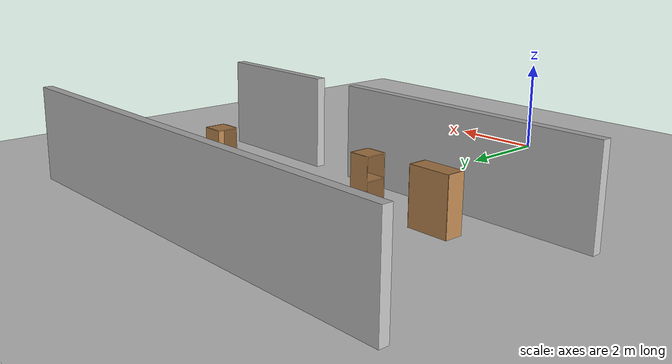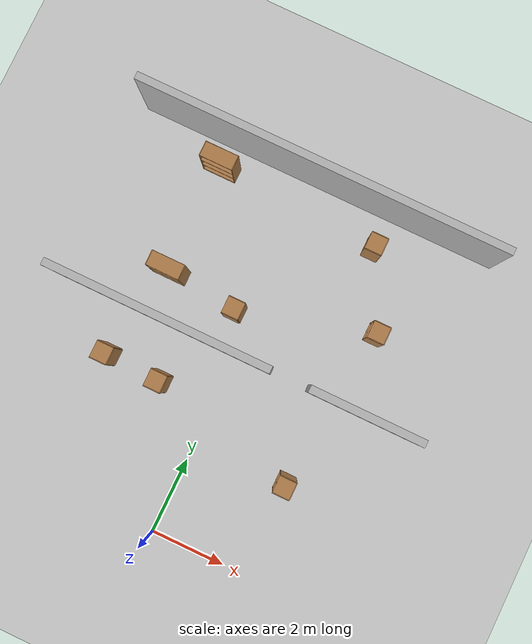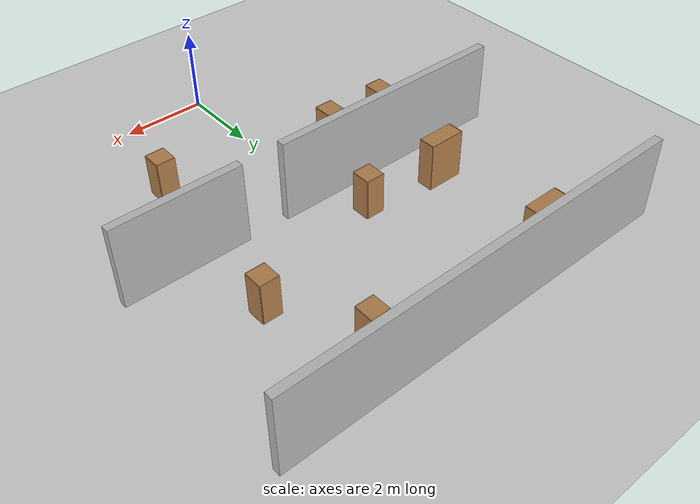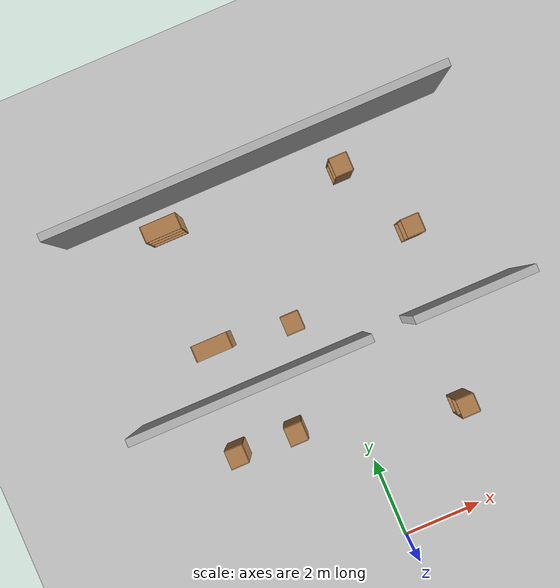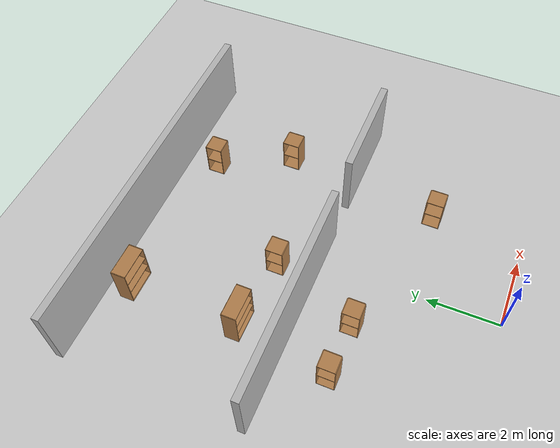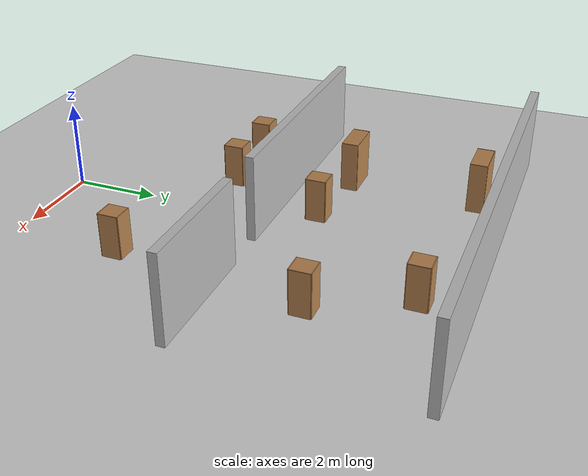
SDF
<sdf version="1.4">
 <world name="default">
  <model name="ground_plane">
   <static>1</static>
   <link name="link">
    <collision name="collision">
     <geometry>
      <plane><normal>0.000000 0.000000 1.000000</normal><size>100.000000 100.000000</size></plane>
     </geometry>
     <surface><friction><ode><mu>100.000000</mu><mu2>50.000000</mu2></ode></friction></surface>
    </collision>
    <visual name="visual">
     <cast_shadows>0</cast_shadows>
     <geometry>
      <plane><normal>0.000000 0.000000 1.000000</normal><size>100.000000 100.000000</size></plane>
     </geometry>
     <material>
      <script><uri>file://media/materials/scripts/gazebo.material</uri><name>Gazebo/Grey</name></script>
     </material>
    </visual>
    <velocity_decay><linear>0.000000</linear><angular>0.000000</angular></velocity_decay>
   </link>
  </model>
  <model name="wall_2_model">
   <pose>0.000000 10.000000 1.000000 0.000000 0.000000 0.000000</pose>
   <static>1</static>
   <link name="wall_2_body">
    <inertial>
     <mass>1.000000</mass>
     <inertia>
      <ixx>1.000000</ixx>
      <ixy>0.000000</ixy>
      <ixz>0.000000</ixz>
      <iyy>1.000000</iyy>
      <iyz>0.000000</iyz>
      <izz>1.000000</izz>
     </inertia>
    </inertial>
    <collision name="collision">
     <geometry><box><size>10.000000 0.200000 2.000000</size></box></geometry>
    </collision>
    <visual name="visual"><geometry><box><size>10.000000 0.200000 2.000000</size></box></geometry></visual>
    <velocity_decay><linear>0.000000</linear><angular>0.000000</angular></velocity_decay>
   </link>
  </model>
  <model name="wall_5_model">
   <pose>-2.000000 5.000000 1.000000 0.000000 0.000000 0.000000</pose>
   <static>1</static>
   <link name="wall_5_body">
    <inertial>
     <mass>1.000000</mass>
     <inertia>
      <ixx>1.000000</ixx>
      <ixy>0.000000</ixy>
      <ixz>0.000000</ixz>
      <iyy>1.000000</iyy>
      <iyz>0.000000</iyz>
      <izz>1.000000</izz>
     </inertia>
    </inertial>
    <collision name="collision">
     <geometry><box><size>6.000000 0.200000 2.000000</size></box></geometry>
    </collision>
    <visual name="visual"><geometry><box><size>6.000000 0.200000 2.000000</size></box></geometry></visual>
    <velocity_decay><linear>0.000000</linear><angular>0.000000</angular></velocity_decay>
   </link>
  </model>
  <model name="wall_6_model">
   <pose>3.500000 5.000000 1.000000 0.000000 0.000000 0.000000</pose>
   <static>1</static>
   <link name="wall_6_body">
    <inertial>
     <mass>1.000000</mass>
     <inertia>
      <ixx>1.000000</ixx>
      <ixy>0.000000</ixy>
      <ixz>0.000000</ixz>
      <iyy>1.000000</iyy>
      <iyz>0.000000</iyz>
      <izz>1.000000</izz>
     </inertia>
    </inertial>
    <collision name="collision">
     <geometry><box><size>3.000000 0.200000 2.000000</size></box></geometry>
    </collision>
    <visual name="visual"><geometry><box><size>3.000000 0.200000 2.000000</size></box></geometry></visual>
    <velocity_decay><linear>0.000000</linear><angular>0.000000</angular></velocity_decay>
   </link>
  </model>
  <model name="cabinet">
   <static>1</static>
   <link name="cabinet_bottom_plate">
    <inertial>
     <pose>0.000000 0.000000 -1.000000 0.000000 0.000000 0.000000</pose>
     <inertia>
      <ixx>2.050000</ixx>
      <ixy>0.000000</ixy>
      <ixz>0.000000</ixz>
      <iyy>2.050000</iyy>
      <iyz>0.000000</iyz>
      <izz>2.050000</izz>
     </inertia>
     <mass>25.000000</mass>
    </inertial>
    <collision name="cabinet_bottom_plate_geom">
     <pose>0.000000 0.000000 0.010000 0.000000 0.000000 0.000000</pose>
     <geometry><box><size>0.450000 0.450000 0.020000</size></box></geometry>
    </collision>
    <visual name="cabinet_bottom_plate_geom_visual">
     <pose>0.000000 0.000000 0.010000 0.000000 0.000000 0.000000</pose>
     <geometry><box><size>0.450000 0.450000 0.020000</size></box></geometry>
     <material>
      <script><uri>file://media/materials/scripts/gazebo.material</uri><name>Gazebo/Wood</name></script>
     </material>
    </visual>
    <collision name="cabinet_bottom_plate_geom_cabinet_back_plate">
     <pose>0.235000 0.000000 0.510000 0.000000 0.000000 0.000000</pose>
     <geometry><box><size>0.020000 0.450000 1.020000</size></box></geometry>
    </collision>
    <visual name="cabinet_bottom_plate_geom_cabinet_back_plate_visual">
     <pose>0.235000 0.000000 0.510000 0.000000 0.000000 0.000000</pose>
     <geometry><box><size>0.020000 0.450000 1.020000</size></box></geometry>
     <material>
      <script><uri>file://media/materials/scripts/gazebo.material</uri><name>Gazebo/Wood</name></script>
     </material>
    </visual>
    <collision name="cabinet_bottom_plate_geom_cabinet_left_plate">
     <pose>0.000000 0.235000 0.510000 0.000000 0.000000 0.000000</pose>
     <geometry><box><size>0.450000 0.020000 1.020000</size></box></geometry>
    </collision>
    <visual name="cabinet_bottom_plate_geom_cabinet_left_plate_visual">
     <pose>0.000000 0.235000 0.510000 0.000000 0.000000 0.000000</pose>
     <geometry><box><size>0.450000 0.020000 1.020000</size></box></geometry>
     <material>
      <script><uri>file://media/materials/scripts/gazebo.material</uri><name>Gazebo/Wood</name></script>
     </material>
    </visual>
    <collision name="cabinet_bottom_plate_geom_cabinet_middle_plate">
     <pose>0.000000 0.000000 0.510000 0.000000 0.000000 0.000000</pose>
     <geometry><box><size>0.450000 0.450000 0.020000</size></box></geometry>
    </collision>
    <visual name="cabinet_bottom_plate_geom_cabinet_middle_plate_visual">
     <pose>0.000000 0.000000 0.510000 0.000000 0.000000 0.000000</pose>
     <geometry><box><size>0.450000 0.450000 0.020000</size></box></geometry>
     <material>
      <script><uri>file://media/materials/scripts/gazebo.material</uri><name>Gazebo/Wood</name></script>
     </material>
    </visual>
    <collision name="cabinet_bottom_plate_geom_cabinet_right_plate">
     <pose>0.000000 -0.235000 0.510000 0.000000 0.000000 0.000000</pose>
     <geometry><box><size>0.450000 0.020000 1.020000</size></box></geometry>
    </collision>
    <visual name="cabinet_bottom_plate_geom_cabinet_right_plate_visual">
     <pose>0.000000 -0.235000 0.510000 0.000000 0.000000 0.000000</pose>
     <geometry><box><size>0.450000 0.020000 1.020000</size></box></geometry>
     <material>
      <script><uri>file://media/materials/scripts/gazebo.material</uri><name>Gazebo/Wood</name></script>
     </material>
    </visual>
    <collision name="cabinet_bottom_plate_geom_cabinet_top_plate">
     <pose>0.000000 0.000000 1.010000 0.000000 0.000000 0.000000</pose>
     <geometry><box><size>0.450000 0.450000 0.020000</size></box></geometry>
    </collision>
    <visual name="cabinet_bottom_plate_geom_cabinet_top_plate_visual">
     <pose>0.000000 0.000000 1.010000 0.000000 0.000000 0.000000</pose>
     <geometry><box><size>0.450000 0.450000 0.020000</size></box></geometry>
     <material>
      <script><uri>file://media/materials/scripts/gazebo.material</uri><name>Gazebo/Wood</name></script>
     </material>
    </visual>
    <velocity_decay><linear>0.000000</linear><angular>0.000000</angular></velocity_decay>
   </link>
   <pose>2.000000 9.000000 0.000000 0.000000 0.000000 0.000000</pose>
  </model>
  <model name="cabinet_0">
   <static>1</static>
   <link name="cabinet_bottom_plate">
    <inertial>
     <pose>0.000000 0.000000 -1.000000 0.000000 0.000000 0.000000</pose>
     <inertia>
      <ixx>2.050000</ixx>
      <ixy>0.000000</ixy>
      <ixz>0.000000</ixz>
      <iyy>2.050000</iyy>
      <iyz>0.000000</iyz>
      <izz>2.050000</izz>
     </inertia>
     <mass>25.000000</mass>
    </inertial>
    <collision name="cabinet_bottom_plate_geom">
     <pose>0.000000 0.000000 0.010000 0.000000 0.000000 0.000000</pose>
     <geometry><box><size>0.450000 0.450000 0.020000</size></box></geometry>
    </collision>
    <visual name="cabinet_bottom_plate_geom_visual">
     <pose>0.000000 0.000000 0.010000 0.000000 0.000000 0.000000</pose>
     <geometry><box><size>0.450000 0.450000 0.020000</size></box></geometry>
     <material>
      <script><uri>file://media/materials/scripts/gazebo.material</uri><name>Gazebo/Wood</name></script>
     </material>
    </visual>
    <collision name="cabinet_bottom_plate_geom_cabinet_back_plate">
     <pose>0.235000 0.000000 0.510000 0.000000 0.000000 0.000000</pose>
     <geometry><box><size>0.020000 0.450000 1.020000</size></box></geometry>
    </collision>
    <visual name="cabinet_bottom_plate_geom_cabinet_back_plate_visual">
     <pose>0.235000 0.000000 0.510000 0.000000 0.000000 0.000000</pose>
     <geometry><box><size>0.020000 0.450000 1.020000</size></box></geometry>
     <material>
      <script><uri>file://media/materials/scripts/gazebo.material</uri><name>Gazebo/Wood</name></script>
     </material>
    </visual>
    <collision name="cabinet_bottom_plate_geom_cabinet_left_plate">
     <pose>0.000000 0.235000 0.510000 0.000000 0.000000 0.000000</pose>
     <geometry><box><size>0.450000 0.020000 1.020000</size></box></geometry>
    </collision>
    <visual name="cabinet_bottom_plate_geom_cabinet_left_plate_visual">
     <pose>0.000000 0.235000 0.510000 0.000000 0.000000 0.000000</pose>
     <geometry><box><size>0.450000 0.020000 1.020000</size></box></geometry>
     <material>
      <script><uri>file://media/materials/scripts/gazebo.material</uri><name>Gazebo/Wood</name></script>
     </material>
    </visual>
    <collision name="cabinet_bottom_plate_geom_cabinet_middle_plate">
     <pose>0.000000 0.000000 0.510000 0.000000 0.000000 0.000000</pose>
     <geometry><box><size>0.450000 0.450000 0.020000</size></box></geometry>
    </collision>
    <visual name="cabinet_bottom_plate_geom_cabinet_middle_plate_visual">
     <pose>0.000000 0.000000 0.510000 0.000000 0.000000 0.000000</pose>
     <geometry><box><size>0.450000 0.450000 0.020000</size></box></geometry>
     <material>
      <script><uri>file://media/materials/scripts/gazebo.material</uri><name>Gazebo/Wood</name></script>
     </material>
    </visual>
    <collision name="cabinet_bottom_plate_geom_cabinet_right_plate">
     <pose>0.000000 -0.235000 0.510000 0.000000 0.000000 0.000000</pose>
     <geometry><box><size>0.450000 0.020000 1.020000</size></box></geometry>
    </collision>
    <visual name="cabinet_bottom_plate_geom_cabinet_right_plate_visual">
     <pose>0.000000 -0.235000 0.510000 0.000000 0.000000 0.000000</pose>
     <geometry><box><size>0.450000 0.020000 1.020000</size></box></geometry>
     <material>
      <script><uri>file://media/materials/scripts/gazebo.material</uri><name>Gazebo/Wood</name></script>
     </material>
    </visual>
    <collision name="cabinet_bottom_plate_geom_cabinet_top_plate">
     <pose>0.000000 0.000000 1.010000 0.000000 0.000000 0.000000</pose>
     <geometry><box><size>0.450000 0.450000 0.020000</size></box></geometry>
    </collision>
    <visual name="cabinet_bottom_plate_geom_cabinet_top_plate_visual">
     <pose>0.000000 0.000000 1.010000 0.000000 0.000000 0.000000</pose>
     <geometry><box><size>0.450000 0.450000 0.020000</size></box></geometry>
     <material>
      <script><uri>file://media/materials/scripts/gazebo.material</uri><name>Gazebo/Wood</name></script>
     </material>
    </visual>
    <velocity_decay><linear>0.000000</linear><angular>0.000000</angular></velocity_decay>
   </link>
   <pose>2.515730 2.560510 0.000000 0.000000 0.000000 0.000000</pose>
  </model>
  <model name="bookshelf_0">
   <static>1</static>
   <link name="link">
    <inertial><mass>1.000000</mass></inertial>
    <collision name="back">
     <pose>0.000000 0.005000 0.600000 0.000000 0.000000 0.000000</pose>
     <geometry><box><size>0.900000 0.010000 1.200000</size></box></geometry>
    </collision>
    <visual name="visual1">
     <pose>0.000000 0.005000 0.600000 0.000000 0.000000 0.000000</pose>
     <geometry><box><size>0.900000 0.010000 1.200000</size></box></geometry>
     <material>
      <script><uri>file://media/materials/scripts/gazebo.material</uri><name>Gazebo/Wood</name></script>
     </material>
    </visual>
    <collision name="left_side">
     <pose>0.450000 -0.195000 0.600000 0.000000 0.000000 0.000000</pose>
     <geometry><box><size>0.020000 0.400000 1.200000</size></box></geometry>
    </collision>
    <visual name="visual2">
     <pose>0.450000 -0.195000 0.600000 0.000000 0.000000 0.000000</pose>
     <geometry><box><size>0.020000 0.400000 1.200000</size></box></geometry>
     <material>
      <script><uri>file://media/materials/scripts/gazebo.material</uri><name>Gazebo/Wood</name></script>
     </material>
    </visual>
    <collision name="right_side">
     <pose>-0.450000 -0.195000 0.600000 0.000000 0.000000 0.000000</pose>
     <geometry><box><size>0.020000 0.400000 1.200000</size></box></geometry>
    </collision>
    <visual name="visual3">
     <pose>-0.450000 -0.195000 0.600000 0.000000 0.000000 0.000000</pose>
     <geometry><box><size>0.020000 0.400000 1.200000</size></box></geometry>
     <material>
      <script><uri>file://media/materials/scripts/gazebo.material</uri><name>Gazebo/Wood</name></script>
     </material>
    </visual>
    <collision name="bottom">
     <pose>0.000000 -0.195000 0.030000 0.000000 0.000000 0.000000</pose>
     <geometry><box><size>0.880000 0.400000 0.060000</size></box></geometry>
    </collision>
    <visual name="visual4">
     <pose>0.000000 -0.195000 0.030000 0.000000 0.000000 0.000000</pose>
     <geometry><box><size>0.880000 0.400000 0.060000</size></box></geometry>
     <material>
      <script><uri>file://media/materials/scripts/gazebo.material</uri><name>Gazebo/Wood</name></script>
     </material>
    </visual>
    <collision name="top">
     <pose>0.000000 -0.195000 1.190000 0.000000 0.000000 0.000000</pose>
     <geometry><box><size>0.880000 0.400000 0.020000</size></box></geometry>
    </collision>
    <visual name="visual5">
     <pose>0.000000 -0.195000 1.190000 0.000000 0.000000 0.000000</pose>
     <geometry><box><size>0.880000 0.400000 0.020000</size></box></geometry>
     <material>
      <script><uri>file://media/materials/scripts/gazebo.material</uri><name>Gazebo/Wood</name></script>
     </material>
    </visual>
    <collision name="low_shelf">
     <pose>0.000000 -0.195000 0.430000 0.000000 0.000000 0.000000</pose>
     <geometry><box><size>0.880000 0.400000 0.020000</size></box></geometry>
    </collision>
    <visual name="visual6">
     <pose>0.000000 -0.195000 0.430000 0.000000 0.000000 0.000000</pose>
     <geometry><box><size>0.880000 0.400000 0.020000</size></box></geometry>
     <material>
      <script><uri>file://media/materials/scripts/gazebo.material</uri><name>Gazebo/Wood</name></script>
     </material>
    </visual>
    <collision name="high_shelf">
     <pose>0.000000 -0.195000 0.800000 0.000000 0.000000 0.000000</pose>
     <geometry><box><size>0.880000 0.400000 0.020000</size></box></geometry>
    </collision>
    <visual name="visual7">
     <pose>0.000000 -0.195000 0.800000 0.000000 0.000000 0.000000</pose>
     <geometry><box><size>0.880000 0.400000 0.020000</size></box></geometry>
     <material>
      <script><uri>file://media/materials/scripts/gazebo.material</uri><name>Gazebo/Wood</name></script>
     </material>
    </visual>
    <velocity_decay><linear>0.000000</linear><angular>0.000000</angular></velocity_decay>
   </link>
   <pose>-2.496570 6.421060 0.000000 0.000000 0.000000 0.000000</pose>
  </model>
  <model name="bookshelf_1">
   <static>1</static>
   <link name="link">
    <inertial><mass>1.000000</mass></inertial>
    <collision name="back">
     <pose>0.000000 0.005000 0.600000 0.000000 0.000000 0.000000</pose>
     <geometry><box><size>0.900000 0.010000 1.200000</size></box></geometry>
    </collision>
    <visual name="visual1">
     <pose>0.000000 0.005000 0.600000 0.000000 0.000000 0.000000</pose>
     <geometry><box><size>0.900000 0.010000 1.200000</size></box></geometry>
     <material>
      <script><uri>file://media/materials/scripts/gazebo.material</uri><name>Gazebo/Wood</name></script>
     </material>
    </visual>
    <collision name="left_side">
     <pose>0.450000 -0.195000 0.600000 0.000000 0.000000 0.000000</pose>
     <geometry><box><size>0.020000 0.400000 1.200000</size></box></geometry>
    </collision>
    <visual name="visual2">
     <pose>0.450000 -0.195000 0.600000 0.000000 0.000000 0.000000</pose>
     <geometry><box><size>0.020000 0.400000 1.200000</size></box></geometry>
     <material>
      <script><uri>file://media/materials/scripts/gazebo.material</uri><name>Gazebo/Wood</name></script>
     </material>
    </visual>
    <collision name="right_side">
     <pose>-0.450000 -0.195000 0.600000 0.000000 0.000000 0.000000</pose>
     <geometry><box><size>0.020000 0.400000 1.200000</size></box></geometry>
    </collision>
    <visual name="visual3">
     <pose>-0.450000 -0.195000 0.600000 0.000000 0.000000 0.000000</pose>
     <geometry><box><size>0.020000 0.400000 1.200000</size></box></geometry>
     <material>
      <script><uri>file://media/materials/scripts/gazebo.material</uri><name>Gazebo/Wood</name></script>
     </material>
    </visual>
    <collision name="bottom">
     <pose>0.000000 -0.195000 0.030000 0.000000 0.000000 0.000000</pose>
     <geometry><box><size>0.880000 0.400000 0.060000</size></box></geometry>
    </collision>
    <visual name="visual4">
     <pose>0.000000 -0.195000 0.030000 0.000000 0.000000 0.000000</pose>
     <geometry><box><size>0.880000 0.400000 0.060000</size></box></geometry>
     <material>
      <script><uri>file://media/materials/scripts/gazebo.material</uri><name>Gazebo/Wood</name></script>
     </material>
    </visual>
    <collision name="top">
     <pose>0.000000 -0.195000 1.190000 0.000000 0.000000 0.000000</pose>
     <geometry><box><size>0.880000 0.400000 0.020000</size></box></geometry>
    </collision>
    <visual name="visual5">
     <pose>0.000000 -0.195000 1.190000 0.000000 0.000000 0.000000</pose>
     <geometry><box><size>0.880000 0.400000 0.020000</size></box></geometry>
     <material>
      <script><uri>file://media/materials/scripts/gazebo.material</uri><name>Gazebo/Wood</name></script>
     </material>
    </visual>
    <collision name="low_shelf">
     <pose>0.000000 -0.195000 0.430000 0.000000 0.000000 0.000000</pose>
     <geometry><box><size>0.880000 0.400000 0.020000</size></box></geometry>
    </collision>
    <visual name="visual6">
     <pose>0.000000 -0.195000 0.430000 0.000000 0.000000 0.000000</pose>
     <geometry><box><size>0.880000 0.400000 0.020000</size></box></geometry>
     <material>
      <script><uri>file://media/materials/scripts/gazebo.material</uri><name>Gazebo/Wood</name></script>
     </material>
    </visual>
    <collision name="high_shelf">
     <pose>0.000000 -0.195000 0.800000 0.000000 0.000000 0.000000</pose>
     <geometry><box><size>0.880000 0.400000 0.020000</size></box></geometry>
    </collision>
    <visual name="visual7">
     <pose>0.000000 -0.195000 0.800000 0.000000 0.000000 0.000000</pose>
     <geometry><box><size>0.880000 0.400000 0.020000</size></box></geometry>
     <material>
      <script><uri>file://media/materials/scripts/gazebo.material</uri><name>Gazebo/Wood</name></script>
     </material>
    </visual>
    <velocity_decay><linear>0.000000</linear><angular>0.000000</angular></velocity_decay>
   </link>
   <pose>-2.498160 9.467850 0.000000 0.000000 0.000000 0.000000</pose>
  </model>
  <model name="cabinet_1">
   <static>1</static>
   <link name="cabinet_bottom_plate">
    <inertial>
     <pose>0.000000 0.000000 -1.000000 0.000000 0.000000 0.000000</pose>
     <inertia>
      <ixx>2.050000</ixx>
      <ixy>0.000000</ixy>
      <ixz>0.000000</ixz>
      <iyy>2.050000</iyy>
      <iyz>0.000000</iyz>
      <izz>2.050000</izz>
     </inertia>
     <mass>25.000000</mass>
    </inertial>
    <collision name="cabinet_bottom_plate_geom">
     <pose>0.000000 0.000000 0.010000 0.000000 0.000000 0.000000</pose>
     <geometry><box><size>0.450000 0.450000 0.020000</size></box></geometry>
    </collision>
    <visual name="cabinet_bottom_plate_geom_visual">
     <pose>0.000000 0.000000 0.010000 0.000000 0.000000 0.000000</pose>
     <geometry><box><size>0.450000 0.450000 0.020000</size></box></geometry>
     <material>
      <script><uri>file://media/materials/scripts/gazebo.material</uri><name>Gazebo/Wood</name></script>
     </material>
    </visual>
    <collision name="cabinet_bottom_plate_geom_cabinet_back_plate">
     <pose>0.235000 0.000000 0.510000 0.000000 0.000000 0.000000</pose>
     <geometry><box><size>0.020000 0.450000 1.020000</size></box></geometry>
    </collision>
    <visual name="cabinet_bottom_plate_geom_cabinet_back_plate_visual">
     <pose>0.235000 0.000000 0.510000 0.000000 0.000000 0.000000</pose>
     <geometry><box><size>0.020000 0.450000 1.020000</size></box></geometry>
     <material>
      <script><uri>file://media/materials/scripts/gazebo.material</uri><name>Gazebo/Wood</name></script>
     </material>
    </visual>
    <collision name="cabinet_bottom_plate_geom_cabinet_left_plate">
     <pose>0.000000 0.235000 0.510000 0.000000 0.000000 0.000000</pose>
     <geometry><box><size>0.450000 0.020000 1.020000</size></box></geometry>
    </collision>
    <visual name="cabinet_bottom_plate_geom_cabinet_left_plate_visual">
     <pose>0.000000 0.235000 0.510000 0.000000 0.000000 0.000000</pose>
     <geometry><box><size>0.450000 0.020000 1.020000</size></box></geometry>
     <material>
      <script><uri>file://media/materials/scripts/gazebo.material</uri><name>Gazebo/Wood</name></script>
     </material>
    </visual>
    <collision name="cabinet_bottom_plate_geom_cabinet_middle_plate">
     <pose>0.000000 0.000000 0.510000 0.000000 0.000000 0.000000</pose>
     <geometry><box><size>0.450000 0.450000 0.020000</size></box></geometry>
    </collision>
    <visual name="cabinet_bottom_plate_geom_cabinet_middle_plate_visual">
     <pose>0.000000 0.000000 0.510000 0.000000 0.000000 0.000000</pose>
     <geometry><box><size>0.450000 0.450000 0.020000</size></box></geometry>
     <material>
      <script><uri>file://media/materials/scripts/gazebo.material</uri><name>Gazebo/Wood</name></script>
     </material>
    </visual>
    <collision name="cabinet_bottom_plate_geom_cabinet_right_plate">
     <pose>0.000000 -0.235000 0.510000 0.000000 0.000000 0.000000</pose>
     <geometry><box><size>0.450000 0.020000 1.020000</size></box></geometry>
    </collision>
    <visual name="cabinet_bottom_plate_geom_cabinet_right_plate_visual">
     <pose>0.000000 -0.235000 0.510000 0.000000 0.000000 0.000000</pose>
     <geometry><box><size>0.450000 0.020000 1.020000</size></box></geometry>
     <material>
      <script><uri>file://media/materials/scripts/gazebo.material</uri><name>Gazebo/Wood</name></script>
     </material>
    </visual>
    <collision name="cabinet_bottom_plate_geom_cabinet_top_plate">
     <pose>0.000000 0.000000 1.010000 0.000000 0.000000 0.000000</pose>
     <geometry><box><size>0.450000 0.450000 0.020000</size></box></geometry>
    </collision>
    <visual name="cabinet_bottom_plate_geom_cabinet_top_plate_visual">
     <pose>0.000000 0.000000 1.010000 0.000000 0.000000 0.000000</pose>
     <geometry><box><size>0.450000 0.450000 0.020000</size></box></geometry>
     <material>
      <script><uri>file://media/materials/scripts/gazebo.material</uri><name>Gazebo/Wood</name></script>
     </material>
    </visual>
    <velocity_decay><linear>0.000000</linear><angular>0.000000</angular></velocity_decay>
   </link>
   <pose>-3.000000 3.599950 0.000000 0.000000 0.000000 0.000000</pose>
  </model>
  <model name="cabinet_2">
   <static>1</static>
   <link name="cabinet_bottom_plate">
    <inertial>
     <pose>0.000000 0.000000 -1.000000 0.000000 0.000000 0.000000</pose>
     <inertia>
      <ixx>2.050000</ixx>
      <ixy>0.000000</ixy>
      <ixz>0.000000</ixz>
      <iyy>2.050000</iyy>
      <iyz>0.000000</iyz>
      <izz>2.050000</izz>
     </inertia>
     <mass>25.000000</mass>
    </inertial>
    <collision name="cabinet_bottom_plate_geom">
     <pose>0.000000 0.000000 0.010000 0.000000 0.000000 0.000000</pose>
     <geometry><box><size>0.450000 0.450000 0.020000</size></box></geometry>
    </collision>
    <visual name="cabinet_bottom_plate_geom_visual">
     <pose>0.000000 0.000000 0.010000 0.000000 0.000000 0.000000</pose>
     <geometry><box><size>0.450000 0.450000 0.020000</size></box></geometry>
     <material>
      <script><uri>file://media/materials/scripts/gazebo.material</uri><name>Gazebo/Wood</name></script>
     </material>
    </visual>
    <collision name="cabinet_bottom_plate_geom_cabinet_back_plate">
     <pose>0.235000 0.000000 0.510000 0.000000 0.000000 0.000000</pose>
     <geometry><box><size>0.020000 0.450000 1.020000</size></box></geometry>
    </collision>
    <visual name="cabinet_bottom_plate_geom_cabinet_back_plate_visual">
     <pose>0.235000 0.000000 0.510000 0.000000 0.000000 0.000000</pose>
     <geometry><box><size>0.020000 0.450000 1.020000</size></box></geometry>
     <material>
      <script><uri>file://media/materials/scripts/gazebo.material</uri><name>Gazebo/Wood</name></script>
     </material>
    </visual>
    <collision name="cabinet_bottom_plate_geom_cabinet_left_plate">
     <pose>0.000000 0.235000 0.510000 0.000000 0.000000 0.000000</pose>
     <geometry><box><size>0.450000 0.020000 1.020000</size></box></geometry>
    </collision>
    <visual name="cabinet_bottom_plate_geom_cabinet_left_plate_visual">
     <pose>0.000000 0.235000 0.510000 0.000000 0.000000 0.000000</pose>
     <geometry><box><size>0.450000 0.020000 1.020000</size></box></geometry>
     <material>
      <script><uri>file://media/materials/scripts/gazebo.material</uri><name>Gazebo/Wood</name></script>
     </material>
    </visual>
    <collision name="cabinet_bottom_plate_geom_cabinet_middle_plate">
     <pose>0.000000 0.000000 0.510000 0.000000 0.000000 0.000000</pose>
     <geometry><box><size>0.450000 0.450000 0.020000</size></box></geometry>
    </collision>
    <visual name="cabinet_bottom_plate_geom_cabinet_middle_plate_visual">
     <pose>0.000000 0.000000 0.510000 0.000000 0.000000 0.000000</pose>
     <geometry><box><size>0.450000 0.450000 0.020000</size></box></geometry>
     <material>
      <script><uri>file://media/materials/scripts/gazebo.material</uri><name>Gazebo/Wood</name></script>
     </material>
    </visual>
    <collision name="cabinet_bottom_plate_geom_cabinet_right_plate">
     <pose>0.000000 -0.235000 0.510000 0.000000 0.000000 0.000000</pose>
     <geometry><box><size>0.450000 0.020000 1.020000</size></box></geometry>
    </collision>
    <visual name="cabinet_bottom_plate_geom_cabinet_right_plate_visual">
     <pose>0.000000 -0.235000 0.510000 0.000000 0.000000 0.000000</pose>
     <geometry><box><size>0.450000 0.020000 1.020000</size></box></geometry>
     <material>
      <script><uri>file://media/materials/scripts/gazebo.material</uri><name>Gazebo/Wood</name></script>
     </material>
    </visual>
    <collision name="cabinet_bottom_plate_geom_cabinet_top_plate">
     <pose>0.000000 0.000000 1.010000 0.000000 0.000000 0.000000</pose>
     <geometry><box><size>0.450000 0.450000 0.020000</size></box></geometry>
    </collision>
    <visual name="cabinet_bottom_plate_geom_cabinet_top_plate_visual">
     <pose>0.000000 0.000000 1.010000 0.000000 0.000000 0.000000</pose>
     <geometry><box><size>0.450000 0.450000 0.020000</size></box></geometry>
     <material>
      <script><uri>file://media/materials/scripts/gazebo.material</uri><name>Gazebo/Wood</name></script>
     </material>
    </visual>
    <velocity_decay><linear>0.000000</linear><angular>0.000000</angular></velocity_decay>
   </link>
   <pose>-1.491830 3.543780 0.000000 0.000000 0.000000 0.000000</pose>
  </model>
  <model name="cabinet_3">
   <static>1</static>
   <link name="cabinet_bottom_plate">
    <inertial>
     <pose>0.000000 0.000000 -1.000000 0.000000 0.000000 0.000000</pose>
     <inertia>
      <ixx>2.050000</ixx>
      <ixy>0.000000</ixy>
      <ixz>0.000000</ixz>
      <iyy>2.050000</iyy>
      <iyz>0.000000</iyz>
      <izz>2.050000</izz>
     </inertia>
     <mass>25.000000</mass>
    </inertial>
    <collision name="cabinet_bottom_plate_geom">
     <pose>0.000000 0.000000 0.010000 0.000000 0.000000 0.000000</pose>
     <geometry><box><size>0.450000 0.450000 0.020000</size></box></geometry>
    </collision>
    <visual name="cabinet_bottom_plate_geom_visual">
     <pose>0.000000 0.000000 0.010000 0.000000 0.000000 0.000000</pose>
     <geometry><box><size>0.450000 0.450000 0.020000</size></box></geometry>
     <material>
      <script><uri>file://media/materials/scripts/gazebo.material</uri><name>Gazebo/Wood</name></script>
     </material>
    </visual>
    <collision name="cabinet_bottom_plate_geom_cabinet_back_plate">
     <pose>0.235000 0.000000 0.510000 0.000000 0.000000 0.000000</pose>
     <geometry><box><size>0.020000 0.450000 1.020000</size></box></geometry>
    </collision>
    <visual name="cabinet_bottom_plate_geom_cabinet_back_plate_visual">
     <pose>0.235000 0.000000 0.510000 0.000000 0.000000 0.000000</pose>
     <geometry><box><size>0.020000 0.450000 1.020000</size></box></geometry>
     <material>
      <script><uri>file://media/materials/scripts/gazebo.material</uri><name>Gazebo/Wood</name></script>
     </material>
    </visual>
    <collision name="cabinet_bottom_plate_geom_cabinet_left_plate">
     <pose>0.000000 0.235000 0.510000 0.000000 0.000000 0.000000</pose>
     <geometry><box><size>0.450000 0.020000 1.020000</size></box></geometry>
    </collision>
    <visual name="cabinet_bottom_plate_geom_cabinet_left_plate_visual">
     <pose>0.000000 0.235000 0.510000 0.000000 0.000000 0.000000</pose>
     <geometry><box><size>0.450000 0.020000 1.020000</size></box></geometry>
     <material>
      <script><uri>file://media/materials/scripts/gazebo.material</uri><name>Gazebo/Wood</name></script>
     </material>
    </visual>
    <collision name="cabinet_bottom_plate_geom_cabinet_middle_plate">
     <pose>0.000000 0.000000 0.510000 0.000000 0.000000 0.000000</pose>
     <geometry><box><size>0.450000 0.450000 0.020000</size></box></geometry>
    </collision>
    <visual name="cabinet_bottom_plate_geom_cabinet_middle_plate_visual">
     <pose>0.000000 0.000000 0.510000 0.000000 0.000000 0.000000</pose>
     <geometry><box><size>0.450000 0.450000 0.020000</size></box></geometry>
     <material>
      <script><uri>file://media/materials/scripts/gazebo.material</uri><name>Gazebo/Wood</name></script>
     </material>
    </visual>
    <collision name="cabinet_bottom_plate_geom_cabinet_right_plate">
     <pose>0.000000 -0.235000 0.510000 0.000000 0.000000 0.000000</pose>
     <geometry><box><size>0.450000 0.020000 1.020000</size></box></geometry>
    </collision>
    <visual name="cabinet_bottom_plate_geom_cabinet_right_plate_visual">
     <pose>0.000000 -0.235000 0.510000 0.000000 0.000000 0.000000</pose>
     <geometry><box><size>0.450000 0.020000 1.020000</size></box></geometry>
     <material>
      <script><uri>file://media/materials/scripts/gazebo.material</uri><name>Gazebo/Wood</name></script>
     </material>
    </visual>
    <collision name="cabinet_bottom_plate_geom_cabinet_top_plate">
     <pose>0.000000 0.000000 1.010000 0.000000 0.000000 0.000000</pose>
     <geometry><box><size>0.450000 0.450000 0.020000</size></box></geometry>
    </collision>
    <visual name="cabinet_bottom_plate_geom_cabinet_top_plate_visual">
     <pose>0.000000 0.000000 1.010000 0.000000 0.000000 0.000000</pose>
     <geometry><box><size>0.450000 0.450000 0.020000</size></box></geometry>
     <material>
      <script><uri>file://media/materials/scripts/gazebo.material</uri><name>Gazebo/Wood</name></script>
     </material>
    </visual>
    <velocity_decay><linear>0.000000</linear><angular>0.000000</angular></velocity_decay>
   </link>
   <pose>3.000000 7.000000 0.000000 0.000000 0.000000 0.000000</pose>
  </model>
  <model name="cabinet_4">
   <static>1</static>
   <link name="cabinet_bottom_plate">
    <inertial>
     <pose>0.000000 0.000000 -1.000000 0.000000 0.000000 0.000000</pose>
     <inertia>
      <ixx>2.050000</ixx>
      <ixy>0.000000</ixy>
      <ixz>0.000000</ixz>
      <iyy>2.050000</iyy>
      <iyz>0.000000</iyz>
      <izz>2.050000</izz>
     </inertia>
     <mass>25.000000</mass>
    </inertial>
    <collision name="cabinet_bottom_plate_geom">
     <pose>0.000000 0.000000 0.010000 0.000000 0.000000 0.000000</pose>
     <geometry><box><size>0.450000 0.450000 0.020000</size></box></geometry>
    </collision>
    <visual name="cabinet_bottom_plate_geom_visual">
     <pose>0.000000 0.000000 0.010000 0.000000 0.000000 0.000000</pose>
     <geometry><box><size>0.450000 0.450000 0.020000</size></box></geometry>
     <material>
      <script><uri>file://media/materials/scripts/gazebo.material</uri><name>Gazebo/Wood</name></script>
     </material>
    </visual>
    <collision name="cabinet_bottom_plate_geom_cabinet_back_plate">
     <pose>0.235000 0.000000 0.510000 0.000000 0.000000 0.000000</pose>
     <geometry><box><size>0.020000 0.450000 1.020000</size></box></geometry>
    </collision>
    <visual name="cabinet_bottom_plate_geom_cabinet_back_plate_visual">
     <pose>0.235000 0.000000 0.510000 0.000000 0.000000 0.000000</pose>
     <geometry><box><size>0.020000 0.450000 1.020000</size></box></geometry>
     <material>
      <script><uri>file://media/materials/scripts/gazebo.material</uri><name>Gazebo/Wood</name></script>
     </material>
    </visual>
    <collision name="cabinet_bottom_plate_geom_cabinet_left_plate">
     <pose>0.000000 0.235000 0.510000 0.000000 0.000000 0.000000</pose>
     <geometry><box><size>0.450000 0.020000 1.020000</size></box></geometry>
    </collision>
    <visual name="cabinet_bottom_plate_geom_cabinet_left_plate_visual">
     <pose>0.000000 0.235000 0.510000 0.000000 0.000000 0.000000</pose>
     <geometry><box><size>0.450000 0.020000 1.020000</size></box></geometry>
     <material>
      <script><uri>file://media/materials/scripts/gazebo.material</uri><name>Gazebo/Wood</name></script>
     </material>
    </visual>
    <collision name="cabinet_bottom_plate_geom_cabinet_middle_plate">
     <pose>0.000000 0.000000 0.510000 0.000000 0.000000 0.000000</pose>
     <geometry><box><size>0.450000 0.450000 0.020000</size></box></geometry>
    </collision>
    <visual name="cabinet_bottom_plate_geom_cabinet_middle_plate_visual">
     <pose>0.000000 0.000000 0.510000 0.000000 0.000000 0.000000</pose>
     <geometry><box><size>0.450000 0.450000 0.020000</size></box></geometry>
     <material>
      <script><uri>file://media/materials/scripts/gazebo.material</uri><name>Gazebo/Wood</name></script>
     </material>
    </visual>
    <collision name="cabinet_bottom_plate_geom_cabinet_right_plate">
     <pose>0.000000 -0.235000 0.510000 0.000000 0.000000 0.000000</pose>
     <geometry><box><size>0.450000 0.020000 1.020000</size></box></geometry>
    </collision>
    <visual name="cabinet_bottom_plate_geom_cabinet_right_plate_visual">
     <pose>0.000000 -0.235000 0.510000 0.000000 0.000000 0.000000</pose>
     <geometry><box><size>0.450000 0.020000 1.020000</size></box></geometry>
     <material>
      <script><uri>file://media/materials/scripts/gazebo.material</uri><name>Gazebo/Wood</name></script>
     </material>
    </visual>
    <collision name="cabinet_bottom_plate_geom_cabinet_top_plate">
     <pose>0.000000 0.000000 1.010000 0.000000 0.000000 0.000000</pose>
     <geometry><box><size>0.450000 0.450000 0.020000</size></box></geometry>
    </collision>
    <visual name="cabinet_bottom_plate_geom_cabinet_top_plate_visual">
     <pose>0.000000 0.000000 1.010000 0.000000 0.000000 0.000000</pose>
     <geometry><box><size>0.450000 0.450000 0.020000</size></box></geometry>
     <material>
      <script><uri>file://media/materials/scripts/gazebo.material</uri><name>Gazebo/Wood</name></script>
     </material>
    </visual>
    <velocity_decay><linear>0.000000</linear><angular>0.000000</angular></velocity_decay>
   </link>
   <pose>-0.537023 6.000000 0.000000 0.000000 0.000000 0.000000</pose>
  </model>
 </world>
</sdf>
